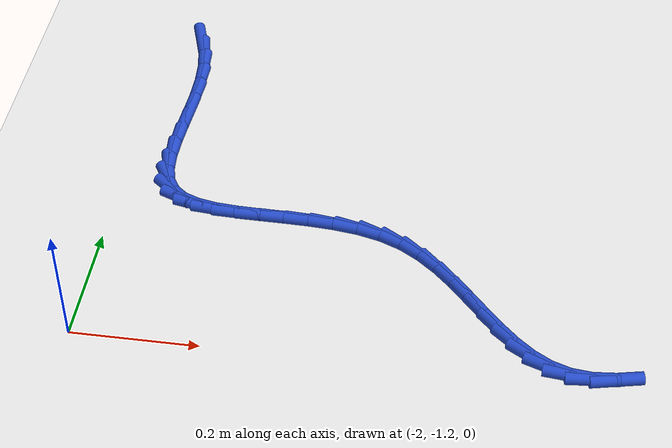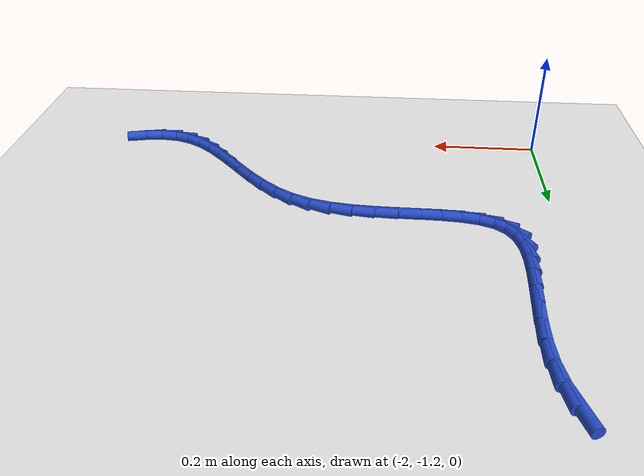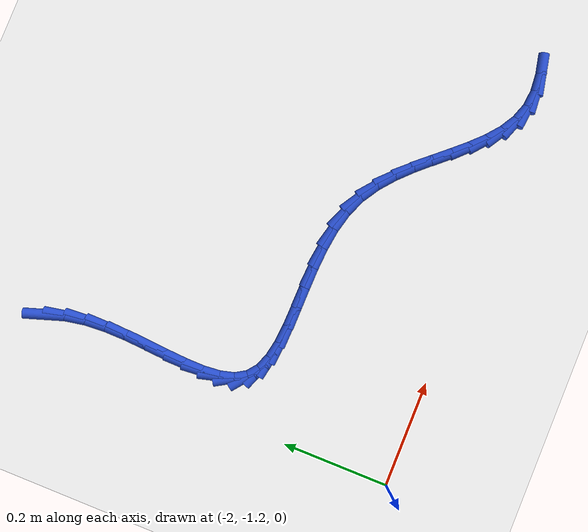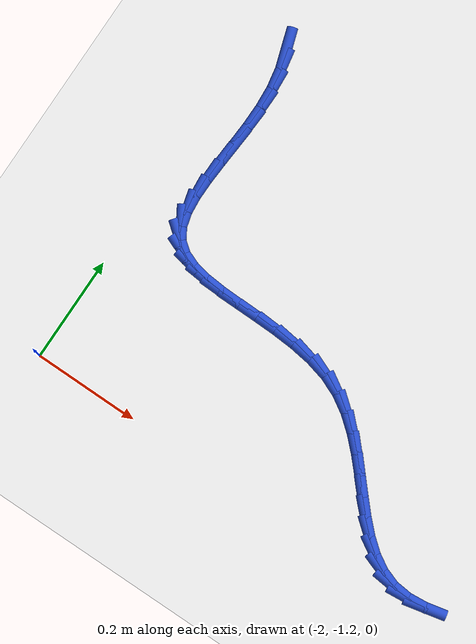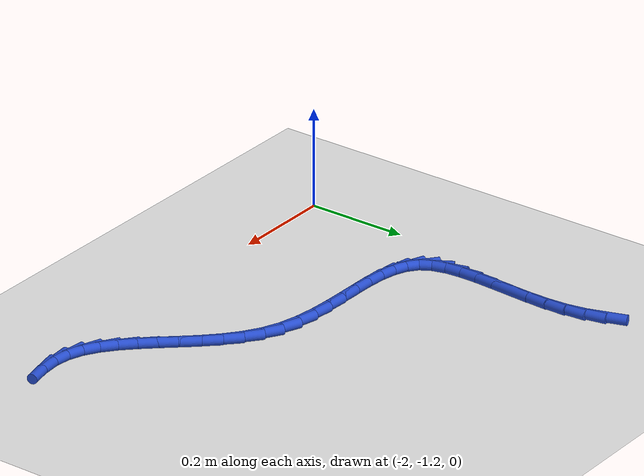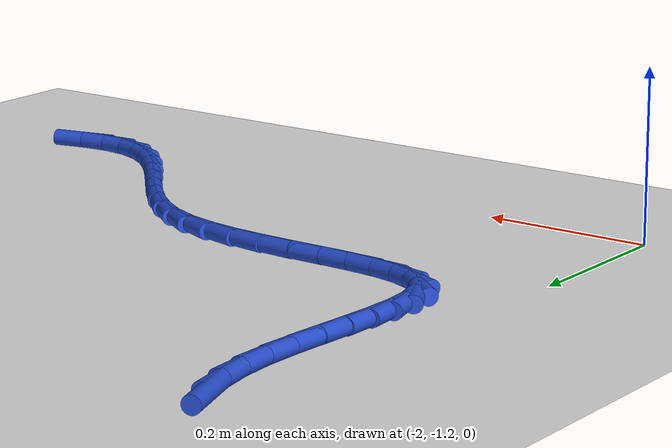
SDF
<sdf version="1.6">
 <world name="default">
  <model name="ground_plane">
   <static>1</static>
   <link name="link">
    <collision name="collision">
     <geometry><plane><normal>0 0 1</normal><size>100 100</size></plane></geometry>
     <surface><friction><ode><mu>100</mu><mu2>50</mu2></ode></friction></surface>
    </collision>
    <visual name="visual">
     <cast_shadows>0</cast_shadows>
     <geometry><plane><normal>0 0 1</normal><size>100 100</size></plane></geometry>
     <material>
      <script><uri>file://media/materials/scripts/gazebo.material</uri><name>Gazebo/WhiteGlow</name></script>
     </material>
    </visual>
   </link>
  </model>
  <model name="line">
   <link name="link_125">
    <pose>-1.944535509605557 -0.504653626829828 0.01 0 1.57 -1.2530868907762194</pose>
    <collision name="collision">
     <geometry><cylinder><radius>0.01</radius><length>0.08</length></cylinder></geometry>
    </collision>
    <visual name="visual">
     <material>
      <script><name>Gazebo/Blue</name><uri>file://media/materials/scripts/gazebo.material</uri></script>
     </material>
     <geometry><cylinder><radius>0.01</radius><length>0.08</length></cylinder></geometry>
    </visual>
   </link>
   <link name="link_126">
    <pose>-1.9329013702990077 -0.5400319664496019 0.01 0 1.57 -1.386873211040682</pose>
    <collision name="collision">
     <geometry><cylinder><radius>0.01</radius><length>0.08</length></cylinder></geometry>
    </collision>
    <visual name="visual">
     <material>
      <script><name>Gazebo/Blue</name><uri>file://media/materials/scripts/gazebo.material</uri></script>
     </material>
     <geometry><cylinder><radius>0.01</radius><length>0.08</length></cylinder></geometry>
    </visual>
   </link>
   <link name="link_127">
    <pose>-1.925895910807382 -0.5776905709931922 0.01 0 1.57 -1.5032080545116886</pose>
    <collision name="collision">
     <geometry><cylinder><radius>0.01</radius><length>0.08</length></cylinder></geometry>
    </collision>
    <visual name="visual">
     <material>
      <script><name>Gazebo/Blue</name><uri>file://media/materials/scripts/gazebo.material</uri></script>
     </material>
     <geometry><cylinder><radius>0.01</radius><length>0.08</length></cylinder></geometry>
    </visual>
   </link>
   <link name="link_128">
    <pose>-1.9232166069282133 -0.6172717394882979 0.01 0 1.57 1.5602405939027464</pose>
    <collision name="collision">
     <geometry><cylinder><radius>0.01</radius><length>0.08</length></cylinder></geometry>
    </collision>
    <visual name="visual">
     <material>
      <script><name>Gazebo/Blue</name><uri>file://media/materials/scripts/gazebo.material</uri></script>
     </material>
     <geometry><cylinder><radius>0.01</radius><length>0.08</length></cylinder></geometry>
    </visual>
   </link>
   <link name="link_129">
    <pose>-1.9236450944233108 -0.6578631020049529 0.01 0 1.57 1.5147299140289339</pose>
    <collision name="collision">
     <geometry><cylinder><radius>0.01</radius><length>0.08</length></cylinder></geometry>
    </collision>
    <visual name="visual">
     <material>
      <script><name>Gazebo/Blue</name><uri>file://media/materials/scripts/gazebo.material</uri></script>
     </material>
     <geometry><cylinder><radius>0.01</radius><length>0.08</length></cylinder></geometry>
    </visual>
   </link>
   <link name="link_130">
    <pose>-1.9259275802556135 -0.6985308315309764 0.01 0 1.57 1.498511746161771</pose>
    <collision name="collision">
     <geometry><cylinder><radius>0.01</radius><length>0.08</length></cylinder></geometry>
    </collision>
    <visual name="visual">
     <material>
      <script><name>Gazebo/Blue</name><uri>file://media/materials/scripts/gazebo.material</uri></script>
     </material>
     <geometry><cylinder><radius>0.01</radius><length>0.08</length></cylinder></geometry>
    </visual>
   </link>
   <link name="link_131">
    <pose>-1.928810271388058 -0.7383411010541874 0.01 0 1.57 1.5122320458829552</pose>
    <collision name="collision">
     <geometry><cylinder><radius>0.01</radius><length>0.08</length></cylinder></geometry>
    </collision>
    <visual name="visual">
     <material>
      <script><name>Gazebo/Blue</name><uri>file://media/materials/scripts/gazebo.material</uri></script>
     </material>
     <geometry><cylinder><radius>0.01</radius><length>0.08</length></cylinder></geometry>
    </visual>
   </link>
   <link name="link_132">
    <pose>-1.931039374783583 -0.7763600835624063 0.01 0 1.57 1.5616810406315773</pose>
    <collision name="collision">
     <geometry><cylinder><radius>0.01</radius><length>0.08</length></cylinder></geometry>
    </collision>
    <visual name="visual">
     <material>
      <script><name>Gazebo/Blue</name><uri>file://media/materials/scripts/gazebo.material</uri></script>
     </material>
     <geometry><cylinder><radius>0.01</radius><length>0.08</length></cylinder></geometry>
    </visual>
   </link>
   <link name="link_133">
    <pose>-1.9313610974051247 -0.8116539520434498 0.01 0 1.57 -1.4812793619116351</pose>
    <collision name="collision">
     <geometry><cylinder><radius>0.01</radius><length>0.08</length></cylinder></geometry>
    </collision>
    <visual name="visual">
     <material>
      <script><name>Gazebo/Blue</name><uri>file://media/materials/scripts/gazebo.material</uri></script>
     </material>
     <geometry><cylinder><radius>0.01</radius><length>0.08</length></cylinder></geometry>
    </visual>
   </link>
   <link name="link_134">
    <pose>-1.928521646215622 -0.8432888794851385 0.01 0 1.57 -1.308703926004874</pose>
    <collision name="collision">
     <geometry><cylinder><radius>0.01</radius><length>0.08</length></cylinder></geometry>
    </collision>
    <visual name="visual">
     <material>
      <script><name>Gazebo/Blue</name><uri>file://media/materials/scripts/gazebo.material</uri></script>
     </material>
     <geometry><cylinder><radius>0.01</radius><length>0.08</length></cylinder></geometry>
    </visual>
   </link>
   <link name="link_135">
    <pose>-1.9212672281780112 -0.8703310388752912 0.01 0 1.57 -1.0299040019266432</pose>
    <collision name="collision">
     <geometry><cylinder><radius>0.01</radius><length>0.08</length></cylinder></geometry>
    </collision>
    <visual name="visual">
     <material>
      <script><name>Gazebo/Blue</name><uri>file://media/materials/scripts/gazebo.material</uri></script>
     </material>
     <geometry><cylinder><radius>0.01</radius><length>0.08</length></cylinder></geometry>
    </visual>
   </link>
   <link name="link_136">
    <pose>-1.9083440502552311 -0.8918466032017267 0.01 0 1.57 -0.6679044767637672</pose>
    <collision name="collision">
     <geometry><cylinder><radius>0.01</radius><length>0.08</length></cylinder></geometry>
    </collision>
    <visual name="visual">
     <material>
      <script><name>Gazebo/Blue</name><uri>file://media/materials/scripts/gazebo.material</uri></script>
     </material>
     <geometry><cylinder><radius>0.01</radius><length>0.08</length></cylinder></geometry>
    </visual>
   </link>
   <link name="link_137">
    <pose>-1.888846143424405 -0.9072275076947245 0.01 0 1.57 -0.3752429969802431</pose>
    <collision name="collision">
     <geometry><cylinder><radius>0.01</radius><length>0.08</length></cylinder></geometry>
    </collision>
    <visual name="visual">
     <material>
      <script><name>Gazebo/Blue</name><uri>file://media/materials/scripts/gazebo.material</uri></script>
     </material>
     <geometry><cylinder><radius>0.01</radius><length>0.08</length></cylinder></geometry>
    </visual>
   </link>
   <link name="link_138">
    <pose>-1.8633624045785622 -0.9172657371874688 0.01 0 1.57 -0.19005796127182645</pose>
    <collision name="collision">
     <geometry><cylinder><radius>0.01</radius><length>0.08</length></cylinder></geometry>
    </collision>
    <visual name="visual">
     <material>
      <script><name>Gazebo/Blue</name><uri>file://media/materials/scripts/gazebo.material</uri></script>
     </material>
     <geometry><cylinder><radius>0.01</radius><length>0.08</length></cylinder></geometry>
    </visual>
   </link>
   <link name="link_139">
    <pose>-1.8328832383744944 -0.9231293174538292 0.01 0 1.57 -0.08265968584091435</pose>
    <collision name="collision">
     <geometry><cylinder><radius>0.01</radius><length>0.08</length></cylinder></geometry>
    </collision>
    <visual name="visual">
     <material>
      <script><name>Gazebo/Blue</name><uri>file://media/materials/scripts/gazebo.material</uri></script>
     </material>
     <geometry><cylinder><radius>0.01</radius><length>0.08</length></cylinder></geometry>
    </visual>
   </link>
   <link name="link_140">
    <pose>-1.7983990545917248 -0.9259862790654838 0.01 0 1.57 -0.02715082902891803</pose>
    <collision name="collision">
     <geometry><cylinder><radius>0.01</radius><length>0.08</length></cylinder></geometry>
    </collision>
    <visual name="visual">
     <material>
      <script><name>Gazebo/Blue</name><uri>file://media/materials/scripts/gazebo.material</uri></script>
     </material>
     <geometry><cylinder><radius>0.01</radius><length>0.08</length></cylinder></geometry>
    </visual>
   </link>
   <link name="link_141">
    <pose>-1.7609002630097756 -0.9270046525941101 0.01 0 1.57 -0.008800119682259272</pose>
    <collision name="collision">
     <geometry><cylinder><radius>0.01</radius><length>0.08</length></cylinder></geometry>
    </collision>
    <visual name="visual">
     <material>
      <script><name>Gazebo/Blue</name><uri>file://media/materials/scripts/gazebo.material</uri></script>
     </material>
     <geometry><cylinder><radius>0.01</radius><length>0.08</length></cylinder></geometry>
    </visual>
   </link>
   <link name="link_142">
    <pose>-1.72137727340817 -0.9273524686113863 0.01 0 1.57 -0.020839099118736826</pose>
    <collision name="collision">
     <geometry><cylinder><radius>0.01</radius><length>0.08</length></cylinder></geometry>
    </collision>
    <visual name="visual">
     <material>
      <script><name>Gazebo/Blue</name><uri>file://media/materials/scripts/gazebo.material</uri></script>
     </material>
     <geometry><cylinder><radius>0.01</radius><length>0.08</length></cylinder></geometry>
    </visual>
   </link>
   <link name="link_143">
    <pose>-1.680820495566431 -0.9281977576889899 0.01 0 1.57 -0.06176329063819971</pose>
    <collision name="collision">
     <geometry><cylinder><radius>0.01</radius><length>0.08</length></cylinder></geometry>
    </collision>
    <visual name="visual">
     <material>
      <script><name>Gazebo/Blue</name><uri>file://media/materials/scripts/gazebo.material</uri></script>
     </material>
     <geometry><cylinder><radius>0.01</radius><length>0.08</length></cylinder></geometry>
    </visual>
   </link>
   <link name="link_144">
    <pose>-1.6402203392640817 -0.9307085503985992 0.01 0 1.57 -0.1339696556313909</pose>
    <collision name="collision">
     <geometry><cylinder><radius>0.01</radius><length>0.08</length></cylinder></geometry>
    </collision>
    <visual name="visual">
     <material>
      <script><name>Gazebo/Blue</name><uri>file://media/materials/scripts/gazebo.material</uri></script>
     </material>
     <geometry><cylinder><radius>0.01</radius><length>0.08</length></cylinder></geometry>
    </visual>
   </link>
   <link name="link_145">
    <pose>-1.6005672142806444 -0.9360528773118919 0.01 0 1.57 -0.24290563709585863</pose>
    <collision name="collision">
     <geometry><cylinder><radius>0.01</radius><length>0.08</length></cylinder></geometry>
    </collision>
    <visual name="visual">
     <material>
      <script><name>Gazebo/Blue</name><uri>file://media/materials/scripts/gazebo.material</uri></script>
     </material>
     <geometry><cylinder><radius>0.01</radius><length>0.08</length></cylinder></geometry>
    </visual>
   </link>
   <link name="link_146">
    <pose>-1.5628515303956432 -0.9453987690005453 0.01 0 1.57 -0.3941410782460304</pose>
    <collision name="collision">
     <geometry><cylinder><radius>0.01</radius><length>0.08</length></cylinder></geometry>
    </collision>
    <visual name="visual">
     <material>
      <script><name>Gazebo/Blue</name><uri>file://media/materials/scripts/gazebo.material</uri></script>
     </material>
     <geometry><cylinder><radius>0.01</radius><length>0.08</length></cylinder></geometry>
    </visual>
   </link>
   <link name="link_147">
    <pose>-1.5280394434542506 -0.9598772544162383 0.01 0 1.57 -0.5557369496643455</pose>
    <collision name="collision">
     <geometry><cylinder><radius>0.01</radius><length>0.08</length></cylinder></geometry>
    </collision>
    <visual name="visual">
     <material>
      <script><name>Gazebo/Blue</name><uri>file://media/materials/scripts/gazebo.material</uri></script>
     </material>
     <geometry><cylinder><radius>0.01</radius><length>0.08</length></cylinder></geometry>
    </visual>
   </link>
   <link name="link_148">
    <pose>-1.4963861797794054 -0.9795347737734867 0.01 0 1.57 -0.6833375817877825</pose>
    <collision name="collision">
     <geometry><cylinder><radius>0.01</radius><length>0.08</length></cylinder></geometry>
    </collision>
    <visual name="visual">
     <material>
      <script><name>Gazebo/Blue</name><uri>file://media/materials/scripts/gazebo.material</uri></script>
     </material>
     <geometry><cylinder><radius>0.01</radius><length>0.08</length></cylinder></geometry>
    </visual>
   </link>
   <link name="link_149">
    <pose>-1.4673388906658786 -1.0031849740957468 0.01 0 1.57 -0.7732662276532647</pose>
    <collision name="collision">
     <geometry><cylinder><radius>0.01</radius><length>0.08</length></cylinder></geometry>
    </collision>
    <visual name="visual">
     <material>
      <script><name>Gazebo/Blue</name><uri>file://media/materials/scripts/gazebo.material</uri></script>
     </material>
     <geometry><cylinder><radius>0.01</radius><length>0.08</length></cylinder></geometry>
    </visual>
   </link>
   <link name="link_150">
    <pose>-1.4403009444024202 -1.0295747073814778 0.01 0 1.57 -0.8274448848230668</pose>
    <collision name="collision">
     <geometry><cylinder><radius>0.01</radius><length>0.08</length></cylinder></geometry>
    </collision>
    <visual name="visual">
     <material>
      <script><name>Gazebo/Blue</name><uri>file://media/materials/scripts/gazebo.material</uri></script>
     </material>
     <geometry><cylinder><radius>0.01</radius><length>0.08</length></cylinder></geometry>
    </visual>
   </link>
   <link name="link_151">
    <pose>-1.4146757092777815 -1.0574508256291404 0.01 0 1.57 -0.8476813037220993</pose>
    <collision name="collision">
     <geometry><cylinder><radius>0.01</radius><length>0.08</length></cylinder></geometry>
    </collision>
    <visual name="visual">
     <material>
      <script><name>Gazebo/Blue</name><uri>file://media/materials/scripts/gazebo.material</uri></script>
     </material>
     <geometry><cylinder><radius>0.01</radius><length>0.08</length></cylinder></geometry>
    </visual>
   </link>
   <link name="link_152">
    <pose>-1.3898665535807135 -1.0855601808371922 0.01 0 1.57 -0.8337307942920734</pose>
    <collision name="collision">
     <geometry><cylinder><radius>0.01</radius><length>0.08</length></cylinder></geometry>
    </collision>
    <visual name="visual">
     <material>
      <script><name>Gazebo/Blue</name><uri>file://media/materials/scripts/gazebo.material</uri></script>
     </material>
     <geometry><cylinder><radius>0.01</radius><length>0.08</length></cylinder></geometry>
    </visual>
   </link>
   <link name="link_153">
    <pose>-1.3652768455999666 -1.1126496250040936 0.01 0 1.57 -0.7823749314671025</pose>
    <collision name="collision">
     <geometry><cylinder><radius>0.01</radius><length>0.08</length></cylinder></geometry>
    </collision>
    <visual name="visual">
     <material>
      <script><name>Gazebo/Blue</name><uri>file://media/materials/scripts/gazebo.material</uri></script>
     </material>
     <geometry><cylinder><radius>0.01</radius><length>0.08</length></cylinder></geometry>
    </visual>
   </link>
   <link name="link_154">
    <pose>-1.3403099536242906 -1.137466010128303 0.01 0 1.57 -0.6872507917590878</pose>
    <collision name="collision">
     <geometry><cylinder><radius>0.01</radius><length>0.08</length></cylinder></geometry>
    </collision>
    <visual name="visual">
     <material>
      <script><name>Gazebo/Blue</name><uri>file://media/materials/scripts/gazebo.material</uri></script>
     </material>
     <geometry><cylinder><radius>0.01</radius><length>0.08</length></cylinder></geometry>
    </visual>
   </link>
   <link name="link_155">
    <pose>-1.3143692459424376 -1.1587561882082813 0.01 0 1.57 -0.5405298753139121</pose>
    <collision name="collision">
     <geometry><cylinder><radius>0.01</radius><length>0.08</length></cylinder></geometry>
    </collision>
    <visual name="visual">
     <material>
      <script><name>Gazebo/Blue</name><uri>file://media/materials/scripts/gazebo.material</uri></script>
     </material>
     <geometry><cylinder><radius>0.01</radius><length>0.08</length></cylinder></geometry>
    </visual>
   </link>
   <link name="link_156">
    <pose>-1.2868580908431577 -1.1752670112424868 0.01 0 1.57 -0.3394019454725915</pose>
    <collision name="collision">
     <geometry><cylinder><radius>0.01</radius><length>0.08</length></cylinder></geometry>
    </collision>
    <visual name="visual">
     <material>
      <script><name>Gazebo/Blue</name><uri>file://media/materials/scripts/gazebo.material</uri></script>
     </material>
     <geometry><cylinder><radius>0.01</radius><length>0.08</length></cylinder></geometry>
    </visual>
   </link>
   <link name="link_157">
    <pose>-1.2571798566152006 -1.1857453312293795 0.01 0 1.57 -0.1036313801674859</pose>
    <collision name="collision">
     <geometry><cylinder><radius>0.01</radius><length>0.08</length></cylinder></geometry>
    </collision>
    <visual name="visual">
     <material>
      <script><name>Gazebo/Blue</name><uri>file://media/materials/scripts/gazebo.material</uri></script>
     </material>
     <geometry><cylinder><radius>0.01</radius><length>0.08</length></cylinder></geometry>
    </visual>
   </link>
   <link name="link_158">
    <pose>-1.2248359229003467 -1.1891092285009162 0.01 0 1.57 0.08869779750731502</pose>
    <collision name="collision">
     <geometry><cylinder><radius>0.01</radius><length>0.08</length></cylinder></geometry>
    </collision>
    <visual name="visual">
     <material>
      <script><name>Gazebo/Blue</name><uri>file://media/materials/scripts/gazebo.material</uri></script>
     </material>
     <geometry><cylinder><radius>0.01</radius><length>0.08</length></cylinder></geometry>
    </visual>
   </link>
   <link name="link_159">
    <pose>-1.1903376575662359 -1.1860412585791573 0.01 0 1.57 0.2154130596540778</pose>
    <collision name="collision">
     <geometry><cylinder><radius>0.01</radius><length>0.08</length></cylinder></geometry>
    </collision>
    <visual name="visual">
     <material>
      <script><name>Gazebo/Blue</name><uri>file://media/materials/scripts/gazebo.material</uri></script>
     </material>
     <geometry><cylinder><radius>0.01</radius><length>0.08</length></cylinder></geometry>
    </visual>
   </link>
  </model>
 </world>
</sdf>
